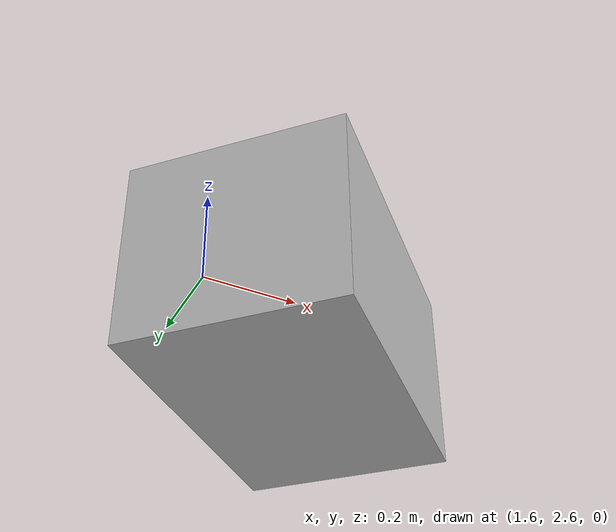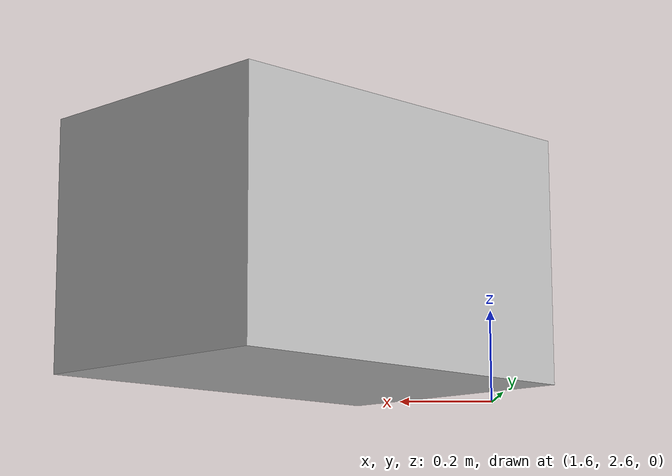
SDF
<?xml version='1.0'?>
<sdf version="1.4">
<model name="land_target">
  <pose>2 3 0.25 0 0 0.75</pose>
  <static>true</static>
    <link name="link">

      <collision name="collision">
        <geometry>
          <box>
            <size>0.82 0.55 0.5</size>
          </box>
        </geometry>
      </collision>
      <visual name="visual">
        <geometry>
          <box>
            <size>0.82 0.55 0.5</size>
          </box>
        </geometry>
      </visual>

      <visual name='middle_pt_visual'>
        <pose frame=''>0 0 0.251 0 -0 0</pose>
        <geometry>
          <cylinder>
            <radius>0.04</radius>
            <length>0.001</length>
          </cylinder>
        </geometry>
        <material>
          <shader type='pixel'>
            <normal_map>__default__</normal_map>
          </shader>
          <ambient>1 0 0 0</ambient>
          <diffuse>1 0 0 0</diffuse>
          <specular>1 0 0 0</specular>
          <emissive>1 0 0 0</emissive>
          <script>
            <name>ModelPreview_1::link::left_pt_visual_MATERIAL_</name>
          </script>
        </material>
        <cast_shadows>1</cast_shadows>
        <transparency>0</transparency>
      </visual>

      <visual name='right_pt_visual'>
        <pose frame=''>0.125 0 0.251 0 -0 0</pose>
        <geometry>
          <cylinder>
            <radius>0.04</radius>
            <length>0.001</length>
          </cylinder>
        </geometry>
        <material>
          <shader type='pixel'>
            <normal_map>__default__</normal_map>
          </shader>
          <ambient>1 0 0 0</ambient>
          <diffuse>1 0 0 0</diffuse>
          <specular>1 0 0 0</specular>
          <emissive>1 0 0 0</emissive>
          <script>
            <name>ModelPreview_1::link::left_pt_visual_MATERIAL_</name>
          </script>
        </material>
        <cast_shadows>1</cast_shadows>
        <transparency>0</transparency>
      </visual>

      <visual name='left_pt_visual'>
        <pose frame=''>-0.125 0 0.251 0 -0 0</pose>
        <geometry>
          <cylinder>
            <radius>0.04</radius>
            <length>0.001</length>
          </cylinder>
        </geometry>
        <material>
          <shader type='pixel'>
            <normal_map>__default__</normal_map>
          </shader>
          <ambient>1 0 0 0</ambient>
          <diffuse>1 0 0 0</diffuse>
          <specular>1 0 0 0</specular>
          <emissive>1 0 0 0</emissive>
          <script>
            <name>ModelPreview_1::link::left_pt_visual_MATERIAL_</name>
          </script>
        </material>
        <cast_shadows>1</cast_shadows>
        <transparency>0</transparency>
      </visual>

      <visual name='front_pt_visual'>
        <pose frame=''>0 0.125 0.251 0 -0 0</pose>
        <geometry>
          <cylinder>
            <radius>0.04</radius>
            <length>0.001</length>
          </cylinder>
        </geometry>
        <material>
          <shader type='pixel'>
            <normal_map>__default__</normal_map>
          </shader>
          <ambient>1 0 0 0</ambient>
          <diffuse>1 0 0 0</diffuse>
          <specular>1 0 0 0</specular>
          <emissive>1 0 0 0</emissive>
          <script>
            <name>ModelPreview_1::link::left_pt_visual_MATERIAL_</name>
          </script>
        </material>
        <cast_shadows>1</cast_shadows>
        <transparency>0</transparency>
      </visual>

    </link>
  </model>
</sdf>
